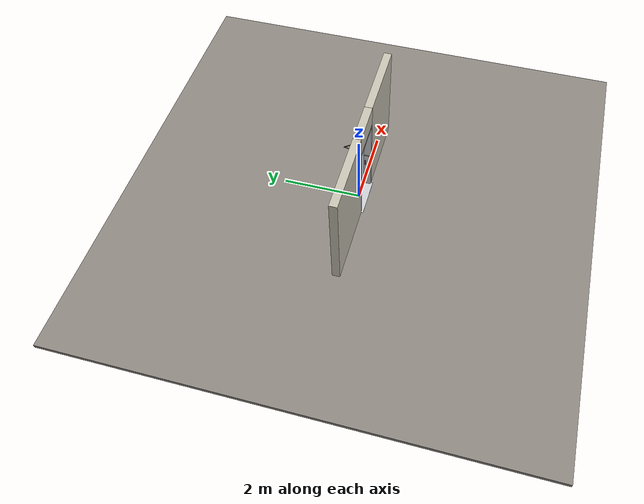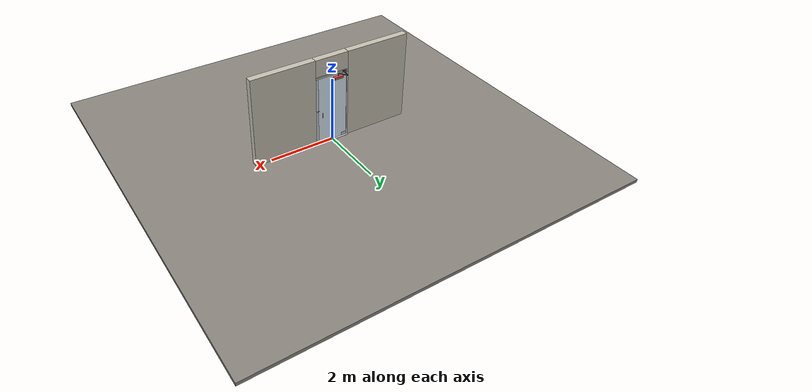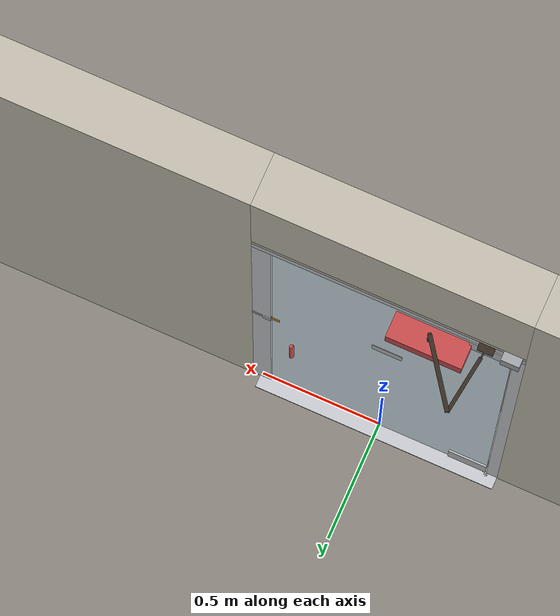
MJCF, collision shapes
<?xml version="1.0" ?>
<mujoco model="db0919_swing_single_full">
  <compiler angle="radian" meshdir="../../hardware" texturedir="../../textures" autolimits="true" inertiafromgeom="false"/>
  <option timestep="0.002" integrator="implicitfast" cone="elliptic" impratio="10" noslip_iterations="3">
    <flag multiccd="enable"/>
  </option>
  <size memory="16M"/>
  <default>
    <geom condim="4" solref="0.005 1" solimp="0.95 0.99 0.001"/>
    <joint solreflimit="0.005 1" solimplimit="0.95 0.99 0.001"/>
    <tendon solreflimit="0.005 1"/>
    <equality solref="0.002 1"/>
  </default>
  <visual>
    <headlight ambient="0.4 0.4 0.4" diffuse="0.7 0.7 0.7" specular="0.2 0.2 0.2"/>
    <quality shadowsize="4096"/>
    <map znear="0.01" zfar="60"/>
  </visual>
  <asset>
    <mesh name="closer_body_fdc4667657" file="closer_body_fdc4667657.obj"/>
    <mesh name="exit_sign_a6449bfa2c" file="exit_sign_a6449bfa2c.obj"/>
    <mesh name="pull_1e5d69a91a" file="pull_1e5d69a91a.obj"/>
    <material name="mat_floor" rgba="0.55 0.53 0.5 1" specular="0.2" shininess="0.15" reflectance="0"/>
    <material name="mat_wall" rgba="0.78 0.76 0.7 1" specular="0.2" shininess="0.1" reflectance="0"/>
    <material name="mat_leaf" rgba="0.85 0.92 0.95 0.25" specular="0.2" shininess="0.95" reflectance="0.1"/>
    <material name="mat_glass_leaf" rgba="0.85 0.92 0.95 0.25" specular="0.2" shininess="0.95" reflectance="0.1"/>
    <material name="mat_patch" rgba="0.75 0.76 0.77 1" specular="0.8" shininess="0.65" reflectance="0.4"/>
    <material name="mat_hinge" rgba="0.65 0.66 0.68 1" specular="0.74" shininess="0.5" reflectance="0.36"/>
    <material name="mat_op_stainless" rgba="0.75 0.76 0.77 1" specular="0.8" shininess="0.65" reflectance="0.4"/>
    <material name="mat_deadbolt" rgba="0.85 0.66 0.3 1" specular="0.8" shininess="0.75" reflectance="0.4"/>
    <material name="mat_frame" rgba="0.8 0.81 0.83 1" specular="0.8" shininess="0.6" reflectance="0.4"/>
    <material name="mat_threshold" rgba="0.8 0.81 0.83 1" specular="0.8" shininess="0.6" reflectance="0.4"/>
    <material name="mat_closer" rgba="0.22 0.17 0.13 1" specular="0.8" shininess="0.6" reflectance="0.4"/>
    <material name="mat_exit_sign" rgba="0.85 0.1 0.1 1" specular="0.2" shininess="0.6" reflectance="0"/>
    <material name="mat_sign_bracket" rgba="0.8 0.81 0.83 1" specular="0.8" shininess="0.6" reflectance="0.4"/>
    <material name="mat_sign" rgba="0.75 0.76 0.77 1" specular="0.8" shininess="0.65" reflectance="0.4"/>
    <texture name="skybox" type="skybox" builtin="gradient" rgb1="0.6 0.7 0.85" rgb2="0.9 0.92 0.95" width="256" height="256"/>
  </asset>
  <worldbody>
    <light name="sun" pos="1.5 -2.5 4" dir="-0.3 0.5 -0.8" directional="true" diffuse="0.8 0.8 0.8" specular="0.3 0.3 0.3" castshadow="true"/>
    <light name="fill" pos="-1.5 2.5 3" dir="0.3 -0.5 -0.7" directional="true" diffuse="0.35 0.35 0.4" castshadow="false"/>
    <camera name="robot_view" pos="0 -2.725812 1.812087" xyaxes="1 0 0 0 0.26963 0.962964" fovy="52"/>
    <camera name="far_view" pos="0 2.549812 1.812087" xyaxes="-1 0 0 0 -0.26963 0.962964" fovy="52"/>
    <camera name="iso" pos="2.004737 -2.303762 2.234138" xyaxes="0.741536 0.670913 0 -0.242917 0.268487 0.932151" fovy="46"/>
    <camera name="detail_handle" pos="0.5335 -0.865 1.245" xyaxes="0.97561 0.219512 0 -0.070934 0.315262 0.94635" fovy="38"/>
    <geom name="floor" type="box" size="6 6 0.05" pos="0 0 -0.05" material="mat_floor" group="0" contype="1" conaffinity="1" friction="0.8 0.005 0.0001" density="2400"/>
    <geom name="wall_left" type="box" size="0.99675 0.1 1.3735" pos="-1.50325 -0.088 1.3735" material="mat_wall" group="0" contype="1" conaffinity="1" friction="0.6 0.005 0.0001" density="800"/>
    <geom name="wall_right" type="box" size="0.98175 0.1 1.3735" pos="1.51825 -0.088 1.3735" material="mat_wall" group="0" contype="1" conaffinity="1" friction="0.6 0.005 0.0001" density="800"/>
    <geom name="wall_header" type="box" size="0.5215 0.1 0.2625" pos="0.015 -0.088 2.4845" material="mat_wall" group="0" contype="1" conaffinity="1" friction="0.6 0.005 0.0001" density="800"/>
    <geom name="pivot_bottom_socket" type="box" size="0.035 0.035 0.0085" pos="-0.4585 0.012 -0.0015" material="mat_hinge" group="1" contype="0" conaffinity="0" density="7850"/>
    <geom name="pivot_top_bracket" type="box" size="0.035 0.035 0.0355" pos="-0.4585 0.012 2.1865" material="mat_hinge" group="1" contype="0" conaffinity="0" density="7850"/>
    <geom name="leaf_deadbolt_strike_b" type="box" size="0.0155 0.003 0.0005" pos="0.461 0 1.0865" quat="-0.5 -0.5 0.5 0.5" material="mat_deadbolt" group="1" contype="0" conaffinity="0" density="7800"/>
    <geom name="leaf_deadbolt_strike_l" type="box" size="0.003 0.0155 0.0005" pos="0.461 0.0125 1.105" quat="-0.5 -0.5 0.5 0.5" material="mat_deadbolt" group="1" contype="0" conaffinity="0" density="7800"/>
    <geom name="leaf_deadbolt_strike_t" type="box" size="0.0155 0.003 0.0005" pos="0.461 0 1.1235" quat="-0.5 -0.5 0.5 0.5" material="mat_deadbolt" group="1" contype="0" conaffinity="0" density="7800"/>
    <geom name="leaf_deadbolt_strike_r" type="box" size="0.003 0.0155 0.0005" pos="0.461 -0.0125 1.105" quat="-0.5 -0.5 0.5 0.5" material="mat_deadbolt" group="1" contype="0" conaffinity="0" density="7800"/>
    <geom name="jamb_hinge" type="box" size="0.0225 0.1 1.0735" pos="-0.484 -0.088 1.0735" material="mat_frame" group="0" contype="1" conaffinity="1" friction="0.6 0.005 0.0001" density="300"/>
    <geom name="strike_1105_wall_n" type="box" size="0.0375 0.08925 0.0155" pos="0.499 -0.09875 1.105" material="mat_frame" group="0" contype="1" conaffinity="1" friction="0.6 0.005 0.0001" density="300"/>
    <geom name="strike_1105_wall_p" type="box" size="0.0157 0.003 0.0155" pos="0.4772 0.0125 1.105" material="mat_frame" group="0" contype="1" conaffinity="1" friction="0.6 0.005 0.0001" density="300"/>
    <geom name="strike_1105_back" type="box" size="0.0228 0.0095 0.0155" pos="0.5137 0 1.105" material="mat_frame" group="0" contype="1" conaffinity="1" friction="0.6 0.005 0.0001" density="300"/>
    <geom name="jamb_strike_0" type="box" size="0.0375 0.1 0.54475" pos="0.499 -0.088 0.54475" material="mat_frame" group="0" contype="1" conaffinity="1" friction="0.6 0.005 0.0001" density="300"/>
    <geom name="jamb_strike_1" type="box" size="0.0375 0.1 0.51325" pos="0.499 -0.088 1.63375" material="mat_frame" group="0" contype="1" conaffinity="1" friction="0.6 0.005 0.0001" density="300"/>
    <geom name="jamb_head" type="box" size="0.5215 0.1 0.0225" pos="0.015 -0.088 2.1695" material="mat_frame" group="0" contype="1" conaffinity="1" friction="0.6 0.005 0.0001" density="300"/>
    <geom name="head_stud" type="box" size="0.5215 0.1 0.015" pos="0.015 -0.088 2.207" material="mat_wall" group="0" contype="1" conaffinity="1" friction="0.6 0.005 0.0001" density="500"/>
    <geom name="threshold" type="box" size="0.5065 0.15 0.004" pos="0 -0.088 0.004" material="mat_threshold" group="0" contype="1" conaffinity="1" friction="0.6 0.005 0.0001" density="2700"/>
    <geom name="closer_bracket" type="box" size="0.03 0.012 0.014" pos="-0.3615 0.024 2.177" material="mat_closer" group="1" contype="0" conaffinity="0" density="2700"/>
    <geom name="exit_sign" type="mesh" mesh="exit_sign_a6449bfa2c" pos="0 -0.15 2.447" material="mat_exit_sign" group="2" contype="0" conaffinity="0" density="500"/>
    <site name="approach_point" pos="0 -1.5 0" quat="1 0 0 0" size="0.05" rgba="0.2 0.9 0.2 0.5" group="4"/>
    <site name="goal_point" pos="0 1.5 0" quat="1 0 0 0" size="0.05" rgba="0.2 0.9 0.2 0.5" group="4"/>
    <site name="door_plane_center" pos="0 0 1.0735" quat="1 0 0 0" size="0.02" rgba="0.2 0.9 0.2 0.5" group="4"/>
    <body name="leaf" pos="-0.4615 0 0">
      <inertial pos="0.347679 0.04414 1.85829" mass="64.19081" quat="0.552915 0.543709 0.43162 -0.460836" diaginertia="1.451316169 14.250607141 15.579786562"/>
      <joint name="leaf_hinge" type="hinge" axis="0 0 1" pos="0.003 0.012 0" limited="true" range="0 1.745329" solreflimit="0.02 1" damping="12.268966" frictionloss="1.265782" stiffness="14.514931" springref="-2.059948" armature="0.02"/>
      <geom name="leaf_glass" type="box" size="0.457 0.005 1.067" pos="0.463 0 1.076" material="mat_glass_leaf" group="0" contype="1" conaffinity="1" friction="0.4 0.005 0.0001" density="1"/>
      <geom name="leaf_patch_bot" type="box" size="0.08 0.013 0.05" pos="0.086 0 0.069" material="mat_patch" group="1" contype="0" conaffinity="0" density="1"/>
      <geom name="leaf_patch_top" type="box" size="0.08 0.013 0.05" pos="0.086 0 2.083" material="mat_patch" group="1" contype="0" conaffinity="0" density="1"/>
      <geom name="pivot_bottom" type="cylinder" size="0.014 0.004" pos="0.003 0.012 0.004" material="mat_hinge" group="1" contype="0" conaffinity="0" density="7850"/>
      <geom name="pivot_top" type="cylinder" size="0.014 0.004" pos="0.003 0.012 2.147" material="mat_hinge" group="1" contype="0" conaffinity="0" density="7850"/>
      <geom name="leaf_pull_n" type="mesh" mesh="pull_1e5d69a91a" pos="0.815 -0.005 0.965" quat="0.707107 0.707107 0 0" material="mat_op_stainless" group="1" contype="0" conaffinity="0" density="3000"/>
      <geom name="leaf_pull_col_n" type="capsule" size="0.0095 0.08" pos="0.815 -0.065 0.965" material="mat_op_stainless" group="3" contype="1" conaffinity="1" rgba="0.8 0.3 0.3 0.25" friction="0.7 0.01 0.0001" density="3000"/>
      <geom name="leaf_pull_p" type="mesh" mesh="pull_1e5d69a91a" pos="0.815 0.005 0.965" quat="-0.707107 0.707107 0 0" material="mat_op_stainless" group="1" contype="0" conaffinity="0" density="3000"/>
      <geom name="leaf_pull_col_p" type="capsule" size="0.0095 0.08" pos="0.815 0.065 0.965" material="mat_op_stainless" group="3" contype="1" conaffinity="1" rgba="0.8 0.3 0.3 0.25" friction="0.7 0.01 0.0001" density="3000"/>
      <geom name="leaf_deadbolt_faceplate" type="box" size="0.0006 0.003 0.0245" pos="0.9194 0 1.105" material="mat_deadbolt" group="1" contype="0" conaffinity="0" density="8500"/>
      <geom name="closer_body" type="mesh" mesh="closer_body_fdc4667657" pos="0.3 0.005 2.054" quat="-0.707107 0.707107 0 0" material="mat_closer" group="1" contype="0" conaffinity="0" density="2000"/>
      <geom name="closer_body_col" type="box" size="0.145 0.05 0.035" pos="0.3 0.055 2.054" material="mat_closer" group="3" contype="1" conaffinity="1" rgba="0.8 0.3 0.3 0.25" friction="0.6 0.005 0.0001" density="2000"/>
      <geom name="closer_pinion_shaft" type="cylinder" size="0.008 0.0615" pos="0.3 0.055 2.1155" material="mat_closer" group="1" contype="0" conaffinity="0" density="2700"/>
      <geom name="sign_push" type="box" size="0.06 0.001 0.03" pos="0.463 -0.006 1.359" material="mat_sign" group="2" contype="0" conaffinity="0" density="7900"/>
      <geom name="sign_pull" type="box" size="0.06 0.001 0.03" pos="0.463 0.006 1.359" material="mat_sign" group="2" contype="0" conaffinity="0" density="7900"/>
      <site name="leaf_pull_grip_n" pos="0.815 -0.065 0.965" quat="1 0 0 0" size="0.012" rgba="0.2 0.9 0.2 0.5" group="4"/>
      <site name="leaf_pull_grip_p" pos="0.815 0.065 0.965" quat="1 0 0 0" size="0.012" rgba="0.2 0.9 0.2 0.5" group="4"/>
      <site name="leaf_edge_mid" pos="0.92 0 1.067" quat="1 0 0 0" size="0.02" rgba="0.2 0.9 0.2 0.5" group="4"/>
      <body name="leaf_deadbolt" pos="0.92 0 1.105">
        <inertial pos="-0.0023 0 0" mass="0.18836" quat="0 0 0.707107 0.707107" diaginertia="0.000013829 0.000052194 0.000057986"/>
        <geom name="leaf_deadbolt_box" type="box" size="0.0277 0.008 0.0125" pos="-0.0023 0 0" material="mat_deadbolt" group="0" contype="1" conaffinity="1" friction="0.3 0.005 0.0001" density="8500"/>
      </body>
      <body name="closer_arm_main" pos="0.3 0.055 2.177" quat="0.454107 0 0 0.890947">
        <inertial pos="0.14 0 0" mass="0.12096" quat="1 0 0 0" diaginertia="0.000003588 0.00079128 0.000792852"/>
        <joint name="closer_pinion" type="hinge" axis="0 0 1" limited="false" damping="0.01" armature="0.002"/>
        <geom name="closer_arm_main_geom" type="box" size="0.14 0.008 0.005" pos="0.14 0 0" material="mat_closer" group="1" contype="0" conaffinity="0" density="2700"/>
        <body name="closer_arm_fore" pos="0.28 0 0" quat="-0.373215 0 0 -0.927745">
          <inertial pos="0.128088 0 0" mass="0.076531" quat="1 0 0 0" diaginertia="0.000001771 0.000437665 0.000438201"/>
          <joint name="closer_elbow" type="hinge" axis="0 0 1" limited="false" damping="0.01" armature="0.002"/>
          <geom name="closer_arm_fore_geom" type="box" size="0.1125 0.007 0.004" pos="0.1125 0 0" material="mat_closer" group="1" contype="0" conaffinity="0" density="2700"/>
          <geom name="closer_fore_neck" type="box" size="0.0175 0.003 0.003" pos="0.2425 0 0" material="mat_closer" group="1" contype="0" conaffinity="0" density="2700"/>
          <geom name="closer_fore_pivot" type="cylinder" size="0.005 0.012" pos="0.26 0 0" material="mat_closer" group="1" contype="0" conaffinity="0" density="2700"/>
        </body>
      </body>
    </body>
  </worldbody>
  <equality>
    <connect name="closer_arm_connect" body1="closer_arm_fore" body2="world" anchor="0.26 0 0" active="true"/>
  </equality>
  <contact>
    <exclude body1="closer_arm_main" body2="leaf"/>
    <exclude body1="closer_arm_fore" body2="leaf"/>
    <exclude body1="closer_arm_main" body2="closer_arm_fore"/>
  </contact>
  <sensor>
    <jointpos name="leaf_hinge_pos" joint="leaf_hinge"/>
    <jointvel name="leaf_hinge_vel" joint="leaf_hinge"/>
  </sensor>
</mujoco>
